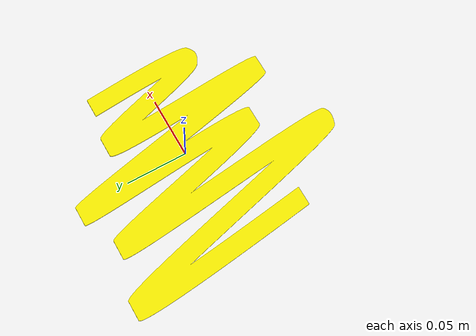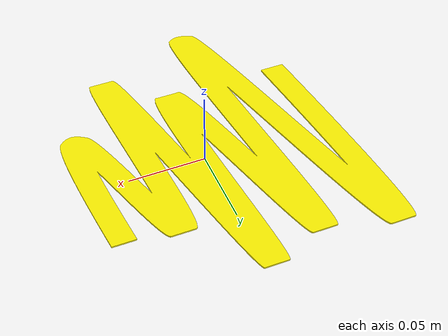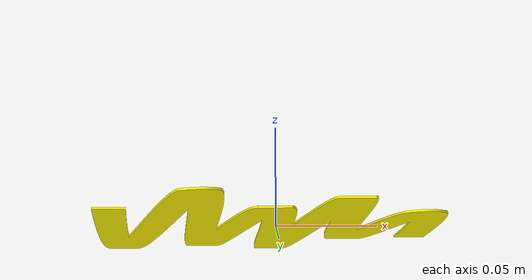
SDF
<?xml version='1.0'?>
<sdf version='1.7'>
  <model name='marking'>
    <link name='link'>
      <self_collide>0</self_collide>
      <enable_wind>0</enable_wind>
      <kinematic>0</kinematic>
      <pose>0 0 0 0 -0 0</pose>
      <gravity>1</gravity>
      <inertial>
        <mass>1</mass>
        <pose>0 0 0 0 -0 0</pose>
        <inertia>
          <ixx>1</ixx>
          <ixy>0</ixy>
          <ixz>0</ixz>
          <iyy>1</iyy>
          <iyz>0</iyz>
          <izz>1</izz>
        </inertia>
      </inertial>
      <visual name='visual'>
        <geometry>
          <mesh>
            <scale>0.001 0.001 0.001</scale>
            <uri>model://marking/meshes/marking.stl</uri>
          </mesh>
        </geometry>
        <material>
          <lighting>1</lighting>
          <script>
            <uri>file://media/materials/scripts/gazebo.material</uri>
            <name>Gazebo/Grey</name>
          </script>
          <shader type='pixel'>
            <normal_map>__default__</normal_map>
          </shader>
          <ambient>1 0.961 0 1</ambient>
          <diffuse>1 0.961 0 1</diffuse>
          <specular>0.01 0.01 0.01 1</specular>
          <emissive>0 0 0 1</emissive>
        </material>
        <pose>0 0 0 0 -0 0</pose>
        <transparency>0</transparency>
        <cast_shadows>1</cast_shadows>
      </visual>
    </link>
    <static>1</static>
    <allow_auto_disable>1</allow_auto_disable>
  </model>
</sdf>
